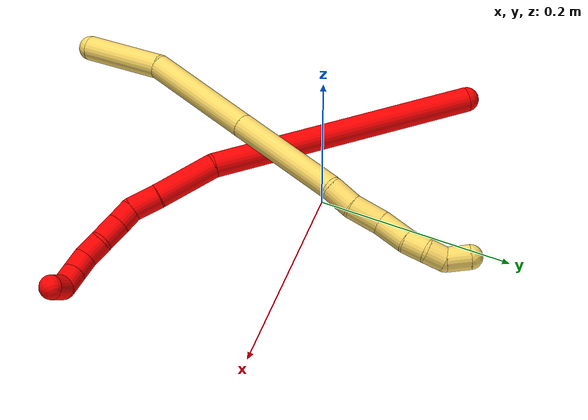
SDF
<sdf version="1.7">
 <world name="default">
  <model name="photoneo_s_sensor">
   <static>1</static>
   <pose>0 0 2 1.57079 1.57079 3.14159</pose>
   <link name="link">
    <inertial><mass>0.1</mass></inertial>
    <sensor name="sensor" type="depth">
     <update_rate>30</update_rate>
     <camera>
      <horizontal_fov>1.22</horizontal_fov>
      <image><width>1920</width><height>1200</height><format>B8G8R8</format></image>
      <clip><near>0.1</near><far>4</far></clip>
      <depth_camera><output>points</output></depth_camera>
     </camera>
     <plugin name="camera_plugin" filename="libgazebo_ros_depth_camera.so">
      <baseline>0.2</baseline>
      <alwaysOn>1</alwaysOn>
      <updateRate>0.0</updateRate>
      <cameraName>camera_ir</cameraName>
      <imageTopicName>/camera/color/image_raw</imageTopicName>
      <cameraInfoTopicName>/camera/color/camera_info</cameraInfoTopicName>
      <depthImageTopicName>/camera/depth/image_raw</depthImageTopicName>
      <depthImageCameraInfoTopicName>/camera/depth/camera_info</depthImageCameraInfoTopicName>
      <pointCloudTopicName>/camera/depth/points</pointCloudTopicName>
      <frameName>fr_optical</frameName>
      <pointCloudCutoff>0.1</pointCloudCutoff>
      <pointCloudCutoffMax>2.0</pointCloudCutoffMax>
      <distortionK1>0</distortionK1>
      <distortionK2>0</distortionK2>
      <distortionK3>0</distortionK3>
      <distortionT1>0</distortionT1>
      <distortionT2>0</distortionT2>
      <CxPrime>0</CxPrime>
      <Cx>0</Cx>
      <Cy>0</Cy>
      <focalLength>0</focalLength>
      <hackBaseline>0</hackBaseline>
     </plugin>
    </sensor>
   </link>
  </model>
  <model name="bin">
   <static>1</static>
   <link name="bottom">
    <collision name="collision-bottom">
     <pose>0 0 -0.01 0 -0 0</pose>
     <geometry><box><size>0.8 0.6 0.02</size></box></geometry>
     <surface>
      <friction><ode><mu>100</mu><mu2>100</mu2></ode></friction>
      <contact><collide_bitmask>65535</collide_bitmask></contact>
     </surface>
    </collision>
   </link>
   <link name="west_wall">
    <collision name="collision-west_wall">
     <pose>-0.41 0 0.1 0 -0 0</pose>
     <geometry><box><size>0.02 0.6 0.2</size></box></geometry>
     <surface>
      <friction><ode><mu>100</mu><mu2>100</mu2></ode></friction>
      <contact><collide_bitmask>65535</collide_bitmask></contact>
     </surface>
    </collision>
   </link>
   <link name="east_wall">
    <collision name="collision-east_wall">
     <pose>0.41 0 0.1 0 -0 0</pose>
     <geometry><box><size>0.02 0.6 0.2</size></box></geometry>
     <surface>
      <friction><ode><mu>100</mu><mu2>100</mu2></ode></friction>
      <contact><collide_bitmask>65535</collide_bitmask></contact>
     </surface>
    </collision>
   </link>
   <link name="south_wall">
    <collision name="collision-south_wall">
     <pose>0 -0.31 0.1 0 -0 0</pose>
     <geometry><box><size>0.8 0.02 0.2</size></box></geometry>
     <surface>
      <friction><ode><mu>100</mu><mu2>100</mu2></ode></friction>
      <contact><collide_bitmask>65535</collide_bitmask></contact>
     </surface>
    </collision>
   </link>
   <link name="north_wall">
    <collision name="collision-north_wall">
     <pose>0 0.31 0.1 0 -0 0</pose>
     <geometry><box><size>0.8 0.02 0.2</size></box></geometry>
     <surface>
      <friction><ode><mu>100</mu><mu2>100</mu2></ode></friction>
      <contact><collide_bitmask>65535</collide_bitmask></contact>
     </surface>
    </collision>
   </link>
  </model>
  <model name="2">
   <static>0</static>
   <link name="2">
    <collision name="collision-cylinder-e_1_1_4">
     <pose>0.135381 0.020114 -0.002061 -1.6729 1.42254 -1.5243</pose>
     <geometry><cylinder><radius>0.0125</radius><length>0.273765</length></cylinder></geometry>
     <surface>
      <friction><ode><mu>1.16</mu><mu2>1.16</mu2><slip1>0</slip1><slip2>0</slip2></ode></friction>
      <contact><ode><kp>1e+06</kp><kd>1</kd><max_vel>0</max_vel><min_depth>0.001</min_depth></ode></contact>
     </surface>
    </collision>
    <visual name="visual-cylinder-e_1_1_4">
     <pose>0.135381 0.020114 -0.002061 -1.6729 1.42254 -1.5243</pose>
     <geometry><cylinder><radius>0.0125</radius><length>0.273765</length></cylinder></geometry>
     <material><ambient>1 0 0 1</ambient></material>
    </visual>
    <collision name="collision-cylinder-e_2_4_5">
     <pose>0.301775 0.038496 -0.0102 2.86397 1.36976 2.80277</pose>
     <geometry><cylinder><radius>0.0125</radius><length>0.063301</length></cylinder></geometry>
     <surface>
      <friction><ode><mu>1.16</mu><mu2>1.16</mu2><slip1>0</slip1><slip2>0</slip2></ode></friction>
      <contact><ode><kp>1e+06</kp><kd>1</kd><max_vel>0</max_vel><min_depth>0.001</min_depth></ode></contact>
     </surface>
    </collision>
    <visual name="visual-cylinder-e_2_4_5">
     <pose>0.301775 0.038496 -0.0102 2.86397 1.36976 2.80277</pose>
     <geometry><cylinder><radius>0.0125</radius><length>0.063301</length></cylinder></geometry>
     <material><ambient>1 0 0 1</ambient></material>
    </visual>
    <collision name="collision-cylinder-e_3_5_6">
     <pose>0.347435 0.035097 -0.018086 2.39688 1.40445 2.27665</pose>
     <geometry><cylinder><radius>0.0125</radius><length>0.029703</length></cylinder></geometry>
     <surface>
      <friction><ode><mu>1.16</mu><mu2>1.16</mu2><slip1>0</slip1><slip2>0</slip2></ode></friction>
      <contact><ode><kp>1e+06</kp><kd>1</kd><max_vel>0</max_vel><min_depth>0.001</min_depth></ode></contact>
     </surface>
    </collision>
    <visual name="visual-cylinder-e_3_5_6">
     <pose>0.347435 0.035097 -0.018086 2.39688 1.40445 2.27665</pose>
     <geometry><cylinder><radius>0.0125</radius><length>0.029703</length></cylinder></geometry>
     <material><ambient>1 0 0 1</ambient></material>
    </visual>
    <collision name="collision-cylinder-e_4_6_7">
     <pose>0.370806 0.032756 -0.024939 3.00873 1.04277 2.91096</pose>
     <geometry><cylinder><radius>0.0125</radius><length>0.020203</length></cylinder></geometry>
     <surface>
      <friction><ode><mu>1.16</mu><mu2>1.16</mu2><slip1>0</slip1><slip2>0</slip2></ode></friction>
      <contact><ode><kp>1e+06</kp><kd>1</kd><max_vel>0</max_vel><min_depth>0.001</min_depth></ode></contact>
     </surface>
    </collision>
    <visual name="visual-cylinder-e_4_6_7">
     <pose>0.370806 0.032756 -0.024939 3.00873 1.04277 2.91096</pose>
     <geometry><cylinder><radius>0.0125</radius><length>0.020203</length></cylinder></geometry>
     <material><ambient>1 0 0 1</ambient></material>
    </visual>
    <collision name="collision-cylinder-e_5_7_8">
     <pose>0.390534 0.0335 -0.036885 -2.93889 1.0012 -2.774</pose>
     <geometry><cylinder><radius>0.0125</radius><length>0.026129</length></cylinder></geometry>
     <surface>
      <friction><ode><mu>1.16</mu><mu2>1.16</mu2><slip1>0</slip1><slip2>0</slip2></ode></friction>
      <contact><ode><kp>1e+06</kp><kd>1</kd><max_vel>0</max_vel><min_depth>0.001</min_depth></ode></contact>
     </surface>
    </collision>
    <visual name="visual-cylinder-e_5_7_8">
     <pose>0.390534 0.0335 -0.036885 -2.93889 1.0012 -2.774</pose>
     <geometry><cylinder><radius>0.0125</radius><length>0.026129</length></cylinder></geometry>
     <material><ambient>1 0 0 1</ambient></material>
    </visual>
    <collision name="collision-cylinder-e_6_8_9">
     <pose>0.411528 0.032927 -0.048697 2.75643 1.08318 2.51469</pose>
     <geometry><cylinder><radius>0.0125</radius><length>0.022621</length></cylinder></geometry>
     <surface>
      <friction><ode><mu>1.16</mu><mu2>1.16</mu2><slip1>0</slip1><slip2>0</slip2></ode></friction>
      <contact><ode><kp>1e+06</kp><kd>1</kd><max_vel>0</max_vel><min_depth>0.001</min_depth></ode></contact>
     </surface>
    </collision>
    <visual name="visual-cylinder-e_6_8_9">
     <pose>0.411528 0.032927 -0.048697 2.75643 1.08318 2.51469</pose>
     <geometry><cylinder><radius>0.0125</radius><length>0.022621</length></cylinder></geometry>
     <material><ambient>1 0 0 1</ambient></material>
    </visual>
    <collision name="collision-cylinder-e_7_9_10">
     <pose>0.429665 0.033542 -0.060996 -2.80245 0.804805 -2.37668</pose>
     <geometry><cylinder><radius>0.0125</radius><length>0.022599</length></cylinder></geometry>
     <surface>
      <friction><ode><mu>1.16</mu><mu2>1.16</mu2><slip1>0</slip1><slip2>0</slip2></ode></friction>
      <contact><ode><kp>1e+06</kp><kd>1</kd><max_vel>0</max_vel><min_depth>0.001</min_depth></ode></contact>
     </surface>
    </collision>
    <visual name="visual-cylinder-e_7_9_10">
     <pose>0.429665 0.033542 -0.060996 -2.80245 0.804805 -2.37668</pose>
     <geometry><cylinder><radius>0.0125</radius><length>0.022599</length></cylinder></geometry>
     <material><ambient>1 0 0 1</ambient></material>
    </visual>
    <collision name="collision-cylinder-e_8_10_11">
     <pose>0.445019 0.038748 -0.075113 -2.77301 0.785146 -2.29557</pose>
     <geometry><cylinder><radius>0.0125</radius><length>0.0204</length></cylinder></geometry>
     <surface>
      <friction><ode><mu>1.16</mu><mu2>1.16</mu2><slip1>0</slip1><slip2>0</slip2></ode></friction>
      <contact><ode><kp>1e+06</kp><kd>1</kd><max_vel>0</max_vel><min_depth>0.001</min_depth></ode></contact>
     </surface>
    </collision>
    <visual name="visual-cylinder-e_8_10_11">
     <pose>0.445019 0.038748 -0.075113 -2.77301 0.785146 -2.29557</pose>
     <geometry><cylinder><radius>0.0125</radius><length>0.0204</length></cylinder></geometry>
     <material><ambient>1 0 0 1</ambient></material>
    </visual>
    <collision name="collision-cylinder-e_9_11_2">
     <pose>0.45826 0.049895 -0.083783 -1.79396 0.602578 -0.742277</pose>
     <geometry><cylinder><radius>0.0125</radius><length>0.021278</length></cylinder></geometry>
     <surface>
      <friction><ode><mu>1.16</mu><mu2>1.16</mu2><slip1>0</slip1><slip2>0</slip2></ode></friction>
      <contact><ode><kp>1e+06</kp><kd>1</kd><max_vel>0</max_vel><min_depth>0.001</min_depth></ode></contact>
     </surface>
    </collision>
    <visual name="visual-cylinder-e_9_11_2">
     <pose>0.45826 0.049895 -0.083783 -1.79396 0.602578 -0.742277</pose>
     <geometry><cylinder><radius>0.0125</radius><length>0.021278</length></cylinder></geometry>
     <material><ambient>1 0 0 1</ambient></material>
    </visual>
    <collision name="collision-sphere-2">
     <pose>0.464289 0.058443 -0.085723 0 -0 0</pose>
     <geometry><sphere><radius>0.0125</radius></sphere></geometry>
     <surface>
      <friction><ode><mu>1.16</mu><mu2>1.16</mu2><slip1>0</slip1><slip2>0</slip2></ode></friction>
      <contact><ode><kp>1e+06</kp><kd>1</kd><max_vel>0</max_vel><min_depth>0.001</min_depth></ode></contact>
     </surface>
    </collision>
    <visual name="visual-sphere-2">
     <pose>0.464289 0.058443 -0.085723 0 -0 0</pose>
     <geometry><sphere><radius>0.0125</radius></sphere></geometry>
     <material><ambient>1 0 0 1</ambient></material>
    </visual>
    <collision name="collision-sphere-11">
     <pose>0.45223 0.041347 -0.081843 0 -0 0</pose>
     <geometry><sphere><radius>0.0125</radius></sphere></geometry>
     <surface>
      <friction><ode><mu>1.16</mu><mu2>1.16</mu2><slip1>0</slip1><slip2>0</slip2></ode></friction>
      <contact><ode><kp>1e+06</kp><kd>1</kd><max_vel>0</max_vel><min_depth>0.001</min_depth></ode></contact>
     </surface>
    </collision>
    <visual name="visual-sphere-11">
     <pose>0.45223 0.041347 -0.081843 0 -0 0</pose>
     <geometry><sphere><radius>0.0125</radius></sphere></geometry>
     <material><ambient>1 0 0 1</ambient></material>
    </visual>
    <collision name="collision-sphere-10">
     <pose>0.437808 0.036149 -0.068383 0 -0 0</pose>
     <geometry><sphere><radius>0.0125</radius></sphere></geometry>
     <surface>
      <friction><ode><mu>1.16</mu><mu2>1.16</mu2><slip1>0</slip1><slip2>0</slip2></ode></friction>
      <contact><ode><kp>1e+06</kp><kd>1</kd><max_vel>0</max_vel><min_depth>0.001</min_depth></ode></contact>
     </surface>
    </collision>
    <visual name="visual-sphere-10">
     <pose>0.437808 0.036149 -0.068383 0 -0 0</pose>
     <geometry><sphere><radius>0.0125</radius></sphere></geometry>
     <material><ambient>1 0 0 1</ambient></material>
    </visual>
    <collision name="collision-sphere-9">
     <pose>0.421521 0.030936 -0.053608 0 -0 0</pose>
     <geometry><sphere><radius>0.0125</radius></sphere></geometry>
     <surface>
      <friction><ode><mu>1.16</mu><mu2>1.16</mu2><slip1>0</slip1><slip2>0</slip2></ode></friction>
      <contact><ode><kp>1e+06</kp><kd>1</kd><max_vel>0</max_vel><min_depth>0.001</min_depth></ode></contact>
     </surface>
    </collision>
    <visual name="visual-sphere-9">
     <pose>0.421521 0.030936 -0.053608 0 -0 0</pose>
     <geometry><sphere><radius>0.0125</radius></sphere></geometry>
     <material><ambient>1 0 0 1</ambient></material>
    </visual>
    <collision name="collision-sphere-4">
     <pose>0.270762 0.040228 -0.004122 0 -0 0</pose>
     <geometry><sphere><radius>0.0125</radius></sphere></geometry>
     <surface>
      <friction><ode><mu>1.16</mu><mu2>1.16</mu2><slip1>0</slip1><slip2>0</slip2></ode></friction>
      <contact><ode><kp>1e+06</kp><kd>1</kd><max_vel>0</max_vel><min_depth>0.001</min_depth></ode></contact>
     </surface>
    </collision>
    <visual name="visual-sphere-4">
     <pose>0.270762 0.040228 -0.004122 0 -0 0</pose>
     <geometry><sphere><radius>0.0125</radius></sphere></geometry>
     <material><ambient>1 0 0 1</ambient></material>
    </visual>
    <collision name="collision-sphere-1">
     <geometry><sphere><radius>0.0125</radius></sphere></geometry>
     <surface>
      <friction><ode><mu>1.16</mu><mu2>1.16</mu2><slip1>0</slip1><slip2>0</slip2></ode></friction>
      <contact><ode><kp>1e+06</kp><kd>1</kd><max_vel>0</max_vel><min_depth>0.001</min_depth></ode></contact>
     </surface>
    </collision>
    <visual name="visual-sphere-1">
     <geometry><sphere><radius>0.0125</radius></sphere></geometry>
     <material><ambient>1 0 0 1</ambient></material>
    </visual>
    <collision name="collision-sphere-8">
     <pose>0.401536 0.034918 -0.043786 0 -0 0</pose>
     <geometry><sphere><radius>0.0125</radius></sphere></geometry>
     <surface>
      <friction><ode><mu>1.16</mu><mu2>1.16</mu2><slip1>0</slip1><slip2>0</slip2></ode></friction>
      <contact><ode><kp>1e+06</kp><kd>1</kd><max_vel>0</max_vel><min_depth>0.001</min_depth></ode></contact>
     </surface>
    </collision>
    <visual name="visual-sphere-8">
     <pose>0.401536 0.034918 -0.043786 0 -0 0</pose>
     <geometry><sphere><radius>0.0125</radius></sphere></geometry>
     <material><ambient>1 0 0 1</ambient></material>
    </visual>
    <collision name="collision-sphere-5">
     <pose>0.332788 0.036763 -0.016278 0 -0 0</pose>
     <geometry><sphere><radius>0.0125</radius></sphere></geometry>
     <surface>
      <friction><ode><mu>1.16</mu><mu2>1.16</mu2><slip1>0</slip1><slip2>0</slip2></ode></friction>
      <contact><ode><kp>1e+06</kp><kd>1</kd><max_vel>0</max_vel><min_depth>0.001</min_depth></ode></contact>
     </surface>
    </collision>
    <visual name="visual-sphere-5">
     <pose>0.332788 0.036763 -0.016278 0 -0 0</pose>
     <geometry><sphere><radius>0.0125</radius></sphere></geometry>
     <material><ambient>1 0 0 1</ambient></material>
    </visual>
    <collision name="collision-sphere-6">
     <pose>0.362081 0.03343 -0.019894 0 -0 0</pose>
     <geometry><sphere><radius>0.0125</radius></sphere></geometry>
     <surface>
      <friction><ode><mu>1.16</mu><mu2>1.16</mu2><slip1>0</slip1><slip2>0</slip2></ode></friction>
      <contact><ode><kp>1e+06</kp><kd>1</kd><max_vel>0</max_vel><min_depth>0.001</min_depth></ode></contact>
     </surface>
    </collision>
    <visual name="visual-sphere-6">
     <pose>0.362081 0.03343 -0.019894 0 -0 0</pose>
     <geometry><sphere><radius>0.0125</radius></sphere></geometry>
     <material><ambient>1 0 0 1</ambient></material>
    </visual>
    <collision name="collision-sphere-7">
     <pose>0.379532 0.032082 -0.029983 0 -0 0</pose>
     <geometry><sphere><radius>0.0125</radius></sphere></geometry>
     <surface>
      <friction><ode><mu>1.16</mu><mu2>1.16</mu2><slip1>0</slip1><slip2>0</slip2></ode></friction>
      <contact><ode><kp>1e+06</kp><kd>1</kd><max_vel>0</max_vel><min_depth>0.001</min_depth></ode></contact>
     </surface>
    </collision>
    <visual name="visual-sphere-7">
     <pose>0.379532 0.032082 -0.029983 0 -0 0</pose>
     <geometry><sphere><radius>0.0125</radius></sphere></geometry>
     <material><ambient>1 0 0 1</ambient></material>
    </visual>
    <inertial>
     <pose>0.244059 0.027756 -0.01802 0 -0 0</pose>
     <mass>0.5</mass>
     <inertia>
      <ixx>-0.000214</ixx>
      <ixy>0</ixy>
      <ixz>0</ixz>
      <iyy>0.001469</iyy>
      <iyz>0</iyz>
      <izz>-0.001996</izz>
     </inertia>
    </inertial>
   </link>
   <pose>-0.15797 0.095948 0.023295 1.43203 0.079623 -0.874722</pose>
  </model>
  <model name="5">
   <static>0</static>
   <link name="5">
    <collision name="collision-cylinder-e_1_1_4">
     <pose>0.01483 0.004798 -0.041065 -3.02529 0.344391 -2.49558</pose>
     <geometry><cylinder><radius>0.0125</radius><length>0.087847</length></cylinder></geometry>
     <surface>
      <friction><ode><mu>1.16</mu><mu2>1.16</mu2><slip1>0</slip1><slip2>0</slip2></ode></friction>
      <contact><ode><kp>1e+06</kp><kd>1</kd><max_vel>0</max_vel><min_depth>0.001</min_depth></ode></contact>
     </surface>
    </collision>
    <visual name="visual-cylinder-e_1_1_4">
     <pose>0.01483 0.004798 -0.041065 -3.02529 0.344391 -2.49558</pose>
     <geometry><cylinder><radius>0.0125</radius><length>0.087847</length></cylinder></geometry>
     <material><ambient>1 0.858824 0.4 1</ambient></material>
    </visual>
    <collision name="collision-cylinder-e_2_4_5">
     <pose>0.03426 0.01016 -0.144129 -3.13247 0.074075 -2.89675</pose>
     <geometry><cylinder><radius>0.0125</radius><length>0.124344</length></cylinder></geometry>
     <surface>
      <friction><ode><mu>1.16</mu><mu2>1.16</mu2><slip1>0</slip1><slip2>0</slip2></ode></friction>
      <contact><ode><kp>1e+06</kp><kd>1</kd><max_vel>0</max_vel><min_depth>0.001</min_depth></ode></contact>
     </surface>
    </collision>
    <visual name="visual-cylinder-e_2_4_5">
     <pose>0.03426 0.01016 -0.144129 -3.13247 0.074075 -2.89675</pose>
     <geometry><cylinder><radius>0.0125</radius><length>0.124344</length></cylinder></geometry>
     <material><ambient>1 0.858824 0.4 1</ambient></material>
    </visual>
    <collision name="collision-cylinder-e_3_5_6">
     <pose>0.043581 0.011722 -0.269293 -3.12582 0.074567 -2.72487</pose>
     <geometry><cylinder><radius>0.0125</radius><length>0.126699</length></cylinder></geometry>
     <surface>
      <friction><ode><mu>1.16</mu><mu2>1.16</mu2><slip1>0</slip1><slip2>0</slip2></ode></friction>
      <contact><ode><kp>1e+06</kp><kd>1</kd><max_vel>0</max_vel><min_depth>0.001</min_depth></ode></contact>
     </surface>
    </collision>
    <visual name="visual-cylinder-e_3_5_6">
     <pose>0.043581 0.011722 -0.269293 -3.12582 0.074567 -2.72487</pose>
     <geometry><cylinder><radius>0.0125</radius><length>0.126699</length></cylinder></geometry>
     <material><ambient>1 0.858824 0.4 1</ambient></material>
    </visual>
    <collision name="collision-cylinder-e_4_6_7">
     <pose>0.046481 0.015895 -0.346087 -2.91259 -0.129266 1.02521</pose>
     <geometry><cylinder><radius>0.0125</radius><length>0.028223</length></cylinder></geometry>
     <surface>
      <friction><ode><mu>1.16</mu><mu2>1.16</mu2><slip1>0</slip1><slip2>0</slip2></ode></friction>
      <contact><ode><kp>1e+06</kp><kd>1</kd><max_vel>0</max_vel><min_depth>0.001</min_depth></ode></contact>
     </surface>
    </collision>
    <visual name="visual-cylinder-e_4_6_7">
     <pose>0.046481 0.015895 -0.346087 -2.91259 -0.129266 1.02521</pose>
     <geometry><cylinder><radius>0.0125</radius><length>0.028223</length></cylinder></geometry>
     <material><ambient>1 0.858824 0.4 1</ambient></material>
    </visual>
    <collision name="collision-cylinder-e_5_7_8">
     <pose>0.044858 0.025574 -0.375043 -2.74038 0.011756 -0.0578</pose>
     <geometry><cylinder><radius>0.0125</radius><length>0.033301</length></cylinder></geometry>
     <surface>
      <friction><ode><mu>1.16</mu><mu2>1.16</mu2><slip1>0</slip1><slip2>0</slip2></ode></friction>
      <contact><ode><kp>1e+06</kp><kd>1</kd><max_vel>0</max_vel><min_depth>0.001</min_depth></ode></contact>
     </surface>
    </collision>
    <visual name="visual-cylinder-e_5_7_8">
     <pose>0.044858 0.025574 -0.375043 -2.74038 0.011756 -0.0578</pose>
     <geometry><cylinder><radius>0.0125</radius><length>0.033301</length></cylinder></geometry>
     <material><ambient>1 0.858824 0.4 1</ambient></material>
    </visual>
    <collision name="collision-cylinder-e_6_8_9">
     <pose>0.044881 0.034825 -0.406171 -2.96934 -0.01077 0.12458</pose>
     <geometry><cylinder><radius>0.0125</radius><length>0.032078</length></cylinder></geometry>
     <surface>
      <friction><ode><mu>1.16</mu><mu2>1.16</mu2><slip1>0</slip1><slip2>0</slip2></ode></friction>
      <contact><ode><kp>1e+06</kp><kd>1</kd><max_vel>0</max_vel><min_depth>0.001</min_depth></ode></contact>
     </surface>
    </collision>
    <visual name="visual-cylinder-e_6_8_9">
     <pose>0.044881 0.034825 -0.406171 -2.96934 -0.01077 0.12458</pose>
     <geometry><cylinder><radius>0.0125</radius><length>0.032078</length></cylinder></geometry>
     <material><ambient>1 0.858824 0.4 1</ambient></material>
    </visual>
    <collision name="collision-cylinder-e_7_9_10">
     <pose>0.045933 0.041206 -0.432597 -2.81224 0.10868 -0.63265</pose>
     <geometry><cylinder><radius>0.0125</radius><length>0.022591</length></cylinder></geometry>
     <surface>
      <friction><ode><mu>1.16</mu><mu2>1.16</mu2><slip1>0</slip1><slip2>0</slip2></ode></friction>
      <contact><ode><kp>1e+06</kp><kd>1</kd><max_vel>0</max_vel><min_depth>0.001</min_depth></ode></contact>
     </surface>
    </collision>
    <visual name="visual-cylinder-e_7_9_10">
     <pose>0.045933 0.041206 -0.432597 -2.81224 0.10868 -0.63265</pose>
     <geometry><cylinder><radius>0.0125</radius><length>0.022591</length></cylinder></geometry>
     <material><ambient>1 0.858824 0.4 1</ambient></material>
    </visual>
    <collision name="collision-cylinder-e_8_10_11">
     <pose>0.047091 0.050753 -0.451357 -2.51279 -0.006715 0.020648</pose>
     <geometry><cylinder><radius>0.0125</radius><length>0.020116</length></cylinder></geometry>
     <surface>
      <friction><ode><mu>1.16</mu><mu2>1.16</mu2><slip1>0</slip1><slip2>0</slip2></ode></friction>
      <contact><ode><kp>1e+06</kp><kd>1</kd><max_vel>0</max_vel><min_depth>0.001</min_depth></ode></contact>
     </surface>
    </collision>
    <visual name="visual-cylinder-e_8_10_11">
     <pose>0.047091 0.050753 -0.451357 -2.51279 -0.006715 0.020648</pose>
     <geometry><cylinder><radius>0.0125</radius><length>0.020116</length></cylinder></geometry>
     <material><ambient>1 0.858824 0.4 1</ambient></material>
    </visual>
    <collision name="collision-cylinder-e_9_11_2">
     <pose>0.052683 0.06535 -0.466302 -2.23606 0.473904 -0.92154</pose>
     <geometry><cylinder><radius>0.0125</radius><length>0.024801</length></cylinder></geometry>
     <surface>
      <friction><ode><mu>1.16</mu><mu2>1.16</mu2><slip1>0</slip1><slip2>0</slip2></ode></friction>
      <contact><ode><kp>1e+06</kp><kd>1</kd><max_vel>0</max_vel><min_depth>0.001</min_depth></ode></contact>
     </surface>
    </collision>
    <visual name="visual-cylinder-e_9_11_2">
     <pose>0.052683 0.06535 -0.466302 -2.23606 0.473904 -0.92154</pose>
     <geometry><cylinder><radius>0.0125</radius><length>0.024801</length></cylinder></geometry>
     <material><ambient>1 0.858824 0.4 1</ambient></material>
    </visual>
    <collision name="collision-sphere-2">
     <pose>0.058342 0.074031 -0.473112 0 -0 0</pose>
     <geometry><sphere><radius>0.0125</radius></sphere></geometry>
     <surface>
      <friction><ode><mu>1.16</mu><mu2>1.16</mu2><slip1>0</slip1><slip2>0</slip2></ode></friction>
      <contact><ode><kp>1e+06</kp><kd>1</kd><max_vel>0</max_vel><min_depth>0.001</min_depth></ode></contact>
     </surface>
    </collision>
    <visual name="visual-sphere-2">
     <pose>0.058342 0.074031 -0.473112 0 -0 0</pose>
     <geometry><sphere><radius>0.0125</radius></sphere></geometry>
     <material><ambient>1 0.858824 0.4 1</ambient></material>
    </visual>
    <collision name="collision-sphere-11">
     <pose>0.047023 0.056669 -0.459491 0 -0 0</pose>
     <geometry><sphere><radius>0.0125</radius></sphere></geometry>
     <surface>
      <friction><ode><mu>1.16</mu><mu2>1.16</mu2><slip1>0</slip1><slip2>0</slip2></ode></friction>
      <contact><ode><kp>1e+06</kp><kd>1</kd><max_vel>0</max_vel><min_depth>0.001</min_depth></ode></contact>
     </surface>
    </collision>
    <visual name="visual-sphere-11">
     <pose>0.047023 0.056669 -0.459491 0 -0 0</pose>
     <geometry><sphere><radius>0.0125</radius></sphere></geometry>
     <material><ambient>1 0.858824 0.4 1</ambient></material>
    </visual>
    <collision name="collision-sphere-10">
     <pose>0.047158 0.044837 -0.443223 0 -0 0</pose>
     <geometry><sphere><radius>0.0125</radius></sphere></geometry>
     <surface>
      <friction><ode><mu>1.16</mu><mu2>1.16</mu2><slip1>0</slip1><slip2>0</slip2></ode></friction>
      <contact><ode><kp>1e+06</kp><kd>1</kd><max_vel>0</max_vel><min_depth>0.001</min_depth></ode></contact>
     </surface>
    </collision>
    <visual name="visual-sphere-10">
     <pose>0.047158 0.044837 -0.443223 0 -0 0</pose>
     <geometry><sphere><radius>0.0125</radius></sphere></geometry>
     <material><ambient>1 0.858824 0.4 1</ambient></material>
    </visual>
    <collision name="collision-sphere-9">
     <pose>0.044708 0.037574 -0.421972 0 -0 0</pose>
     <geometry><sphere><radius>0.0125</radius></sphere></geometry>
     <surface>
      <friction><ode><mu>1.16</mu><mu2>1.16</mu2><slip1>0</slip1><slip2>0</slip2></ode></friction>
      <contact><ode><kp>1e+06</kp><kd>1</kd><max_vel>0</max_vel><min_depth>0.001</min_depth></ode></contact>
     </surface>
    </collision>
    <visual name="visual-sphere-9">
     <pose>0.044708 0.037574 -0.421972 0 -0 0</pose>
     <geometry><sphere><radius>0.0125</radius></sphere></geometry>
     <material><ambient>1 0.858824 0.4 1</ambient></material>
    </visual>
    <collision name="collision-sphere-4">
     <pose>0.029659 0.009595 -0.08213 0 -0 0</pose>
     <geometry><sphere><radius>0.0125</radius></sphere></geometry>
     <surface>
      <friction><ode><mu>1.16</mu><mu2>1.16</mu2><slip1>0</slip1><slip2>0</slip2></ode></friction>
      <contact><ode><kp>1e+06</kp><kd>1</kd><max_vel>0</max_vel><min_depth>0.001</min_depth></ode></contact>
     </surface>
    </collision>
    <visual name="visual-sphere-4">
     <pose>0.029659 0.009595 -0.08213 0 -0 0</pose>
     <geometry><sphere><radius>0.0125</radius></sphere></geometry>
     <material><ambient>1 0.858824 0.4 1</ambient></material>
    </visual>
    <collision name="collision-sphere-1">
     <geometry><sphere><radius>0.0125</radius></sphere></geometry>
     <surface>
      <friction><ode><mu>1.16</mu><mu2>1.16</mu2><slip1>0</slip1><slip2>0</slip2></ode></friction>
      <contact><ode><kp>1e+06</kp><kd>1</kd><max_vel>0</max_vel><min_depth>0.001</min_depth></ode></contact>
     </surface>
    </collision>
    <visual name="visual-sphere-1">
     <geometry><sphere><radius>0.0125</radius></sphere></geometry>
     <material><ambient>1 0.858824 0.4 1</ambient></material>
    </visual>
    <collision name="collision-sphere-8">
     <pose>0.045054 0.032076 -0.39037 0 -0 0</pose>
     <geometry><sphere><radius>0.0125</radius></sphere></geometry>
     <surface>
      <friction><ode><mu>1.16</mu><mu2>1.16</mu2><slip1>0</slip1><slip2>0</slip2></ode></friction>
      <contact><ode><kp>1e+06</kp><kd>1</kd><max_vel>0</max_vel><min_depth>0.001</min_depth></ode></contact>
     </surface>
    </collision>
    <visual name="visual-sphere-8">
     <pose>0.045054 0.032076 -0.39037 0 -0 0</pose>
     <geometry><sphere><radius>0.0125</radius></sphere></geometry>
     <material><ambient>1 0.858824 0.4 1</ambient></material>
    </visual>
    <collision name="collision-sphere-5">
     <pose>0.038861 0.010726 -0.206127 0 -0 0</pose>
     <geometry><sphere><radius>0.0125</radius></sphere></geometry>
     <surface>
      <friction><ode><mu>1.16</mu><mu2>1.16</mu2><slip1>0</slip1><slip2>0</slip2></ode></friction>
      <contact><ode><kp>1e+06</kp><kd>1</kd><max_vel>0</max_vel><min_depth>0.001</min_depth></ode></contact>
     </surface>
    </collision>
    <visual name="visual-sphere-5">
     <pose>0.038861 0.010726 -0.206127 0 -0 0</pose>
     <geometry><sphere><radius>0.0125</radius></sphere></geometry>
     <material><ambient>1 0.858824 0.4 1</ambient></material>
    </visual>
    <collision name="collision-sphere-6">
     <pose>0.0483 0.012718 -0.332459 0 -0 0</pose>
     <geometry><sphere><radius>0.0125</radius></sphere></geometry>
     <surface>
      <friction><ode><mu>1.16</mu><mu2>1.16</mu2><slip1>0</slip1><slip2>0</slip2></ode></friction>
      <contact><ode><kp>1e+06</kp><kd>1</kd><max_vel>0</max_vel><min_depth>0.001</min_depth></ode></contact>
     </surface>
    </collision>
    <visual name="visual-sphere-6">
     <pose>0.0483 0.012718 -0.332459 0 -0 0</pose>
     <geometry><sphere><radius>0.0125</radius></sphere></geometry>
     <material><ambient>1 0.858824 0.4 1</ambient></material>
    </visual>
    <collision name="collision-sphere-7">
     <pose>0.044662 0.019072 -0.359716 0 -0 0</pose>
     <geometry><sphere><radius>0.0125</radius></sphere></geometry>
     <surface>
      <friction><ode><mu>1.16</mu><mu2>1.16</mu2><slip1>0</slip1><slip2>0</slip2></ode></friction>
      <contact><ode><kp>1e+06</kp><kd>1</kd><max_vel>0</max_vel><min_depth>0.001</min_depth></ode></contact>
     </surface>
    </collision>
    <visual name="visual-sphere-7">
     <pose>0.044662 0.019072 -0.359716 0 -0 0</pose>
     <geometry><sphere><radius>0.0125</radius></sphere></geometry>
     <material><ambient>1 0.858824 0.4 1</ambient></material>
    </visual>
    <inertial>
     <pose>0.037243 0.01832 -0.242703 0 -0 0</pose>
     <mass>0.5</mass>
     <inertia>
      <ixx>-0.000489</ixx>
      <ixy>0</ixy>
      <ixz>0</ixz>
      <iyy>0.000218</iyy>
      <iyz>0</iyz>
      <izz>-0.0001</izz>
     </inertia>
    </inertial>
   </link>
   <pose>-0.083917 -0.288534 0.013081 -1.73566 -0.907312 2.79919</pose>
  </model>
 </world>
</sdf>
